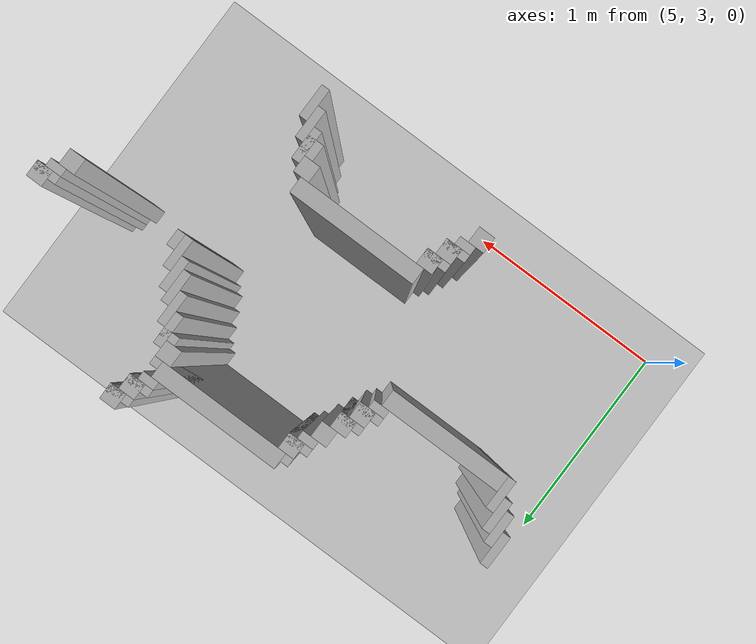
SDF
<sdf version="1.6">
 <world name="slam_world">
  <model name="ground_plane">
   <static>true</static>
   <link name="link">
    <collision name="collision">
     <geometry><plane><normal>0 0 1</normal><size>100 100</size></plane></geometry>
    </collision>
    <visual name="visual">
     <geometry><plane><normal>0 0 1</normal><size>100 100</size></plane></geometry>
     <material>
      <ambient>0.8 0.8 0.8 1</ambient>
      <diffuse>0.8 0.8 0.8 1</diffuse>
      <specular>0.8 0.8 0.8 1</specular>
     </material>
    </visual>
   </link>
  </model>
  <model name="wall_4296">
   <static>true</static>
   <pose>6.751740139211137 4.454756380510441 1.0 0 0 0</pose>
   <link name="link">
    <collision name="collision">
     <geometry><box><size>0.06960556844547564 0.06960556844547564 2.0</size></box></geometry>
    </collision>
    <visual name="visual">
     <geometry><box><size>0.06960556844547564 0.06960556844547564 2.0</size></box></geometry>
     <material><ambient>0.5 0.5 0.5 1</ambient><diffuse>0.7 0.7 0.7 1</diffuse></material>
    </visual>
   </link>
  </model>
  <model name="wall_4307">
   <static>true</static>
   <pose>6.734338747099768 4.437354988399072 1.0 0 0 0</pose>
   <link name="link">
    <collision name="collision">
     <geometry><box><size>0.10440835266821345 0.03480278422273782 2.0</size></box></geometry>
    </collision>
    <visual name="visual">
     <geometry><box><size>0.10440835266821345 0.03480278422273782 2.0</size></box></geometry>
     <material><ambient>0.5 0.5 0.5 1</ambient><diffuse>0.7 0.7 0.7 1</diffuse></material>
    </visual>
   </link>
  </model>
  <model name="wall_4315">
   <static>true</static>
   <pose>6.716937354988398 4.385150812064965 1.0 0 0 0</pose>
   <link name="link">
    <collision name="collision">
     <geometry><box><size>0.06960556844547564 0.06960556844547564 2.0</size></box></geometry>
    </collision>
    <visual name="visual">
     <geometry><box><size>0.06960556844547564 0.06960556844547564 2.0</size></box></geometry>
     <material><ambient>0.5 0.5 0.5 1</ambient><diffuse>0.7 0.7 0.7 1</diffuse></material>
    </visual>
   </link>
  </model>
  <model name="wall_4322">
   <static>true</static>
   <pose>6.69953596287703 4.367749419953596 1.0 0 0 0</pose>
   <link name="link">
    <collision name="collision">
     <geometry><box><size>0.10440835266821345 0.03480278422273782 2.0</size></box></geometry>
    </collision>
    <visual name="visual">
     <geometry><box><size>0.10440835266821345 0.03480278422273782 2.0</size></box></geometry>
     <material><ambient>0.5 0.5 0.5 1</ambient><diffuse>0.7 0.7 0.7 1</diffuse></material>
    </visual>
   </link>
  </model>
  <model name="wall_4330">
   <static>true</static>
   <pose>6.682134570765661 4.332946635730858 1.0 0 0 0</pose>
   <link name="link">
    <collision name="collision">
     <geometry><box><size>0.06960556844547564 0.03480278422273782 2.0</size></box></geometry>
    </collision>
    <visual name="visual">
     <geometry><box><size>0.06960556844547564 0.03480278422273782 2.0</size></box></geometry>
     <material><ambient>0.5 0.5 0.5 1</ambient><diffuse>0.7 0.7 0.7 1</diffuse></material>
    </visual>
   </link>
  </model>
  <model name="wall_4338">
   <static>true</static>
   <pose>6.403712296983758 4.280742459396752 1.0 0 0 0</pose>
   <link name="link">
    <collision name="collision">
     <geometry><box><size>0.5568445475638051 0.06960556844547564 2.0</size></box></geometry>
    </collision>
    <visual name="visual">
     <geometry><box><size>0.5568445475638051 0.06960556844547564 2.0</size></box></geometry>
     <material><ambient>0.5 0.5 0.5 1</ambient><diffuse>0.7 0.7 0.7 1</diffuse></material>
    </visual>
   </link>
  </model>
  <model name="wall_4350">
   <static>true</static>
   <pose>6.403712296983758 4.263341067285383 1.0 0 0 0</pose>
   <link name="link">
    <collision name="collision">
     <geometry><box><size>0.6264501160092807 0.03480278422273782 2.0</size></box></geometry>
    </collision>
    <visual name="visual">
     <geometry><box><size>0.6264501160092807 0.03480278422273782 2.0</size></box></geometry>
     <material><ambient>0.5 0.5 0.5 1</ambient><diffuse>0.7 0.7 0.7 1</diffuse></material>
    </visual>
   </link>
  </model>
  <model name="wall_4363">
   <static>true</static>
   <pose>6.125290023201856 4.211136890951276 1.0 0 0 0</pose>
   <link name="link">
    <collision name="collision">
     <geometry><box><size>0.06960556844547564 0.06960556844547564 2.0</size></box></geometry>
    </collision>
    <visual name="visual">
     <geometry><box><size>0.06960556844547564 0.06960556844547564 2.0</size></box></geometry>
     <material><ambient>0.5 0.5 0.5 1</ambient><diffuse>0.7 0.7 0.7 1</diffuse></material>
    </visual>
   </link>
  </model>
  <model name="wall_4364">
   <static>true</static>
   <pose>6.682134570765661 4.211136890951276 1.0 0 0 0</pose>
   <link name="link">
    <collision name="collision">
     <geometry><box><size>0.06960556844547564 0.06960556844547564 2.0</size></box></geometry>
    </collision>
    <visual name="visual">
     <geometry><box><size>0.06960556844547564 0.06960556844547564 2.0</size></box></geometry>
     <material><ambient>0.5 0.5 0.5 1</ambient><diffuse>0.7 0.7 0.7 1</diffuse></material>
    </visual>
   </link>
  </model>
  <model name="wall_4379">
   <static>true</static>
   <pose>6.107888631090487 4.193735498839907 1.0 0 0 0</pose>
   <link name="link">
    <collision name="collision">
     <geometry><box><size>0.10440835266821345 0.03480278422273782 2.0</size></box></geometry>
    </collision>
    <visual name="visual">
     <geometry><box><size>0.10440835266821345 0.03480278422273782 2.0</size></box></geometry>
     <material><ambient>0.5 0.5 0.5 1</ambient><diffuse>0.7 0.7 0.7 1</diffuse></material>
    </visual>
   </link>
  </model>
  <model name="wall_4380">
   <static>true</static>
   <pose>6.734338747099768 4.1415313225058 1.0 0 0 0</pose>
   <link name="link">
    <collision name="collision">
     <geometry><box><size>0.03480278422273782 0.13921113689095127 2.0</size></box></geometry>
    </collision>
    <visual name="visual">
     <geometry><box><size>0.03480278422273782 0.13921113689095127 2.0</size></box></geometry>
     <material><ambient>0.5 0.5 0.5 1</ambient><diffuse>0.7 0.7 0.7 1</diffuse></material>
    </visual>
   </link>
  </model>
  <model name="wall_4394">
   <static>true</static>
   <pose>6.090487238979118 4.158932714617169 1.0 0 0 0</pose>
   <link name="link">
    <collision name="collision">
     <geometry><box><size>0.06960556844547564 0.03480278422273782 2.0</size></box></geometry>
    </collision>
    <visual name="visual">
     <geometry><box><size>0.06960556844547564 0.03480278422273782 2.0</size></box></geometry>
     <material><ambient>0.5 0.5 0.5 1</ambient><diffuse>0.7 0.7 0.7 1</diffuse></material>
    </visual>
   </link>
  </model>
  <model name="wall_4395">
   <static>true</static>
   <pose>6.716937354988398 4.158932714617169 1.0 0 0 0</pose>
   <link name="link">
    <collision name="collision">
     <geometry><box><size>0.06960556844547564 0.03480278422273782 2.0</size></box></geometry>
    </collision>
    <visual name="visual">
     <geometry><box><size>0.06960556844547564 0.03480278422273782 2.0</size></box></geometry>
     <material><ambient>0.5 0.5 0.5 1</ambient><diffuse>0.7 0.7 0.7 1</diffuse></material>
    </visual>
   </link>
  </model>
  <model name="wall_4407">
   <static>true</static>
   <pose>5.307424593967517 4.071925754060325 1.0 0 0 0</pose>
   <link name="link">
    <collision name="collision">
     <geometry><box><size>0.03480278422273782 0.13921113689095127 2.0</size></box></geometry>
    </collision>
    <visual name="visual">
     <geometry><box><size>0.03480278422273782 0.13921113689095127 2.0</size></box></geometry>
     <material><ambient>0.5 0.5 0.5 1</ambient><diffuse>0.7 0.7 0.7 1</diffuse></material>
    </visual>
   </link>
  </model>
  <model name="wall_4408">
   <static>true</static>
   <pose>6.05568445475638 4.106728538283062 1.0 0 0 0</pose>
   <link name="link">
    <collision name="collision">
     <geometry><box><size>0.06960556844547564 0.06960556844547564 2.0</size></box></geometry>
    </collision>
    <visual name="visual">
     <geometry><box><size>0.06960556844547564 0.06960556844547564 2.0</size></box></geometry>
     <material><ambient>0.5 0.5 0.5 1</ambient><diffuse>0.7 0.7 0.7 1</diffuse></material>
    </visual>
   </link>
  </model>
  <model name="wall_4409">
   <static>true</static>
   <pose>6.769141531322505 4.071925754060325 1.0 0 0 0</pose>
   <link name="link">
    <collision name="collision">
     <geometry><box><size>0.03480278422273782 0.13921113689095127 2.0</size></box></geometry>
    </collision>
    <visual name="visual">
     <geometry><box><size>0.03480278422273782 0.13921113689095127 2.0</size></box></geometry>
     <material><ambient>0.5 0.5 0.5 1</ambient><diffuse>0.7 0.7 0.7 1</diffuse></material>
    </visual>
   </link>
  </model>
  <model name="wall_4423">
   <static>true</static>
   <pose>5.342227378190255 4.002320185614849 1.0 0 0 0</pose>
   <link name="link">
    <collision name="collision">
     <geometry><box><size>0.03480278422273782 0.13921113689095127 2.0</size></box></geometry>
    </collision>
    <visual name="visual">
     <geometry><box><size>0.03480278422273782 0.13921113689095127 2.0</size></box></geometry>
     <material><ambient>0.5 0.5 0.5 1</ambient><diffuse>0.7 0.7 0.7 1</diffuse></material>
    </visual>
   </link>
  </model>
  <model name="wall_4424">
   <static>true</static>
   <pose>6.020881670533642 4.037122969837587 1.0 0 0 0</pose>
   <link name="link">
    <collision name="collision">
     <geometry><box><size>0.06960556844547564 0.06960556844547564 2.0</size></box></geometry>
    </collision>
    <visual name="visual">
     <geometry><box><size>0.06960556844547564 0.06960556844547564 2.0</size></box></geometry>
     <material><ambient>0.5 0.5 0.5 1</ambient><diffuse>0.7 0.7 0.7 1</diffuse></material>
    </visual>
   </link>
  </model>
  <model name="wall_4425">
   <static>true</static>
   <pose>6.803944315545244 4.002320185614849 1.0 0 0 0</pose>
   <link name="link">
    <collision name="collision">
     <geometry><box><size>0.03480278422273782 0.13921113689095127 2.0</size></box></geometry>
    </collision>
    <visual name="visual">
     <geometry><box><size>0.03480278422273782 0.13921113689095127 2.0</size></box></geometry>
     <material><ambient>0.5 0.5 0.5 1</ambient><diffuse>0.7 0.7 0.7 1</diffuse></material>
    </visual>
   </link>
  </model>
  <model name="wall_4439">
   <static>true</static>
   <pose>5.377030162412993 3.967517401392111 1.0 0 0 0</pose>
   <link name="link">
    <collision name="collision">
     <geometry><box><size>0.03480278422273782 0.13921113689095127 2.0</size></box></geometry>
    </collision>
    <visual name="visual">
     <geometry><box><size>0.03480278422273782 0.13921113689095127 2.0</size></box></geometry>
     <material><ambient>0.5 0.5 0.5 1</ambient><diffuse>0.7 0.7 0.7 1</diffuse></material>
    </visual>
   </link>
  </model>
  <model name="wall_4440">
   <static>true</static>
   <pose>6.003480278422273 4.019721577726218 1.0 0 0 0</pose>
   <link name="link">
    <collision name="collision">
     <geometry><box><size>0.10440835266821345 0.03480278422273782 2.0</size></box></geometry>
    </collision>
    <visual name="visual">
     <geometry><box><size>0.10440835266821345 0.03480278422273782 2.0</size></box></geometry>
     <material><ambient>0.5 0.5 0.5 1</ambient><diffuse>0.7 0.7 0.7 1</diffuse></material>
    </visual>
   </link>
  </model>
  <model name="wall_4441">
   <static>true</static>
   <pose>6.838747099767981 3.967517401392111 1.0 0 0 0</pose>
   <link name="link">
    <collision name="collision">
     <geometry><box><size>0.03480278422273782 0.13921113689095127 2.0</size></box></geometry>
    </collision>
    <visual name="visual">
     <geometry><box><size>0.03480278422273782 0.13921113689095127 2.0</size></box></geometry>
     <material><ambient>0.5 0.5 0.5 1</ambient><diffuse>0.7 0.7 0.7 1</diffuse></material>
    </visual>
   </link>
  </model>
  <model name="wall_4454">
   <static>true</static>
   <pose>5.986078886310905 3.967517401392111 1.0 0 0 0</pose>
   <link name="link">
    <collision name="collision">
     <geometry><box><size>0.06960556844547564 0.06960556844547564 2.0</size></box></geometry>
    </collision>
    <visual name="visual">
     <geometry><box><size>0.06960556844547564 0.06960556844547564 2.0</size></box></geometry>
     <material><ambient>0.5 0.5 0.5 1</ambient><diffuse>0.7 0.7 0.7 1</diffuse></material>
    </visual>
   </link>
  </model>
  <model name="wall_4455">
   <static>true</static>
   <pose>7.447795823665893 3.967517401392111 1.0 0 0 0</pose>
   <link name="link">
    <collision name="collision">
     <geometry><box><size>0.06960556844547564 0.06960556844547564 2.0</size></box></geometry>
    </collision>
    <visual name="visual">
     <geometry><box><size>0.06960556844547564 0.06960556844547564 2.0</size></box></geometry>
     <material><ambient>0.5 0.5 0.5 1</ambient><diffuse>0.7 0.7 0.7 1</diffuse></material>
    </visual>
   </link>
  </model>
  <model name="wall_4464">
   <static>true</static>
   <pose>5.41183294663573 3.897911832946636 1.0 0 0 0</pose>
   <link name="link">
    <collision name="collision">
     <geometry><box><size>0.03480278422273782 0.13921113689095127 2.0</size></box></geometry>
    </collision>
    <visual name="visual">
     <geometry><box><size>0.03480278422273782 0.13921113689095127 2.0</size></box></geometry>
     <material><ambient>0.5 0.5 0.5 1</ambient><diffuse>0.7 0.7 0.7 1</diffuse></material>
    </visual>
   </link>
  </model>
  <model name="wall_4465">
   <static>true</static>
   <pose>5.968677494199536 3.9501160092807424 1.0 0 0 0</pose>
   <link name="link">
    <collision name="collision">
     <geometry><box><size>0.10440835266821345 0.03480278422273782 2.0</size></box></geometry>
    </collision>
    <visual name="visual">
     <geometry><box><size>0.10440835266821345 0.03480278422273782 2.0</size></box></geometry>
     <material><ambient>0.5 0.5 0.5 1</ambient><diffuse>0.7 0.7 0.7 1</diffuse></material>
    </visual>
   </link>
  </model>
  <model name="wall_4466">
   <static>true</static>
   <pose>6.8735498839907185 3.897911832946636 1.0 0 0 0</pose>
   <link name="link">
    <collision name="collision">
     <geometry><box><size>0.03480278422273782 0.13921113689095127 2.0</size></box></geometry>
    </collision>
    <visual name="visual">
     <geometry><box><size>0.03480278422273782 0.13921113689095127 2.0</size></box></geometry>
     <material><ambient>0.5 0.5 0.5 1</ambient><diffuse>0.7 0.7 0.7 1</diffuse></material>
    </visual>
   </link>
  </model>
  <model name="wall_4467">
   <static>true</static>
   <pose>7.430394431554524 3.9501160092807424 1.0 0 0 0</pose>
   <link name="link">
    <collision name="collision">
     <geometry><box><size>0.10440835266821345 0.03480278422273782 2.0</size></box></geometry>
    </collision>
    <visual name="visual">
     <geometry><box><size>0.10440835266821345 0.03480278422273782 2.0</size></box></geometry>
     <material><ambient>0.5 0.5 0.5 1</ambient><diffuse>0.7 0.7 0.7 1</diffuse></material>
    </visual>
   </link>
  </model>
  <model name="wall_4479">
   <static>true</static>
   <pose>5.951276102088166 3.9153132250580045 1.0 0 0 0</pose>
   <link name="link">
    <collision name="collision">
     <geometry><box><size>0.06960556844547564 0.03480278422273782 2.0</size></box></geometry>
    </collision>
    <visual name="visual">
     <geometry><box><size>0.06960556844547564 0.03480278422273782 2.0</size></box></geometry>
     <material><ambient>0.5 0.5 0.5 1</ambient><diffuse>0.7 0.7 0.7 1</diffuse></material>
    </visual>
   </link>
  </model>
  <model name="wall_4480">
   <static>true</static>
   <pose>7.412993039443156 3.9153132250580045 1.0 0 0 0</pose>
   <link name="link">
    <collision name="collision">
     <geometry><box><size>0.06960556844547564 0.03480278422273782 2.0</size></box></geometry>
    </collision>
    <visual name="visual">
     <geometry><box><size>0.06960556844547564 0.03480278422273782 2.0</size></box></geometry>
     <material><ambient>0.5 0.5 0.5 1</ambient><diffuse>0.7 0.7 0.7 1</diffuse></material>
    </visual>
   </link>
  </model>
  <model name="wall_4489">
   <static>true</static>
   <pose>5.690255220417633 3.863109048723898 1.0 0 0 0</pose>
   <link name="link">
    <collision name="collision">
     <geometry><box><size>0.5220417633410672 0.06960556844547564 2.0</size></box></geometry>
    </collision>
    <visual name="visual">
     <geometry><box><size>0.5220417633410672 0.06960556844547564 2.0</size></box></geometry>
     <material><ambient>0.5 0.5 0.5 1</ambient><diffuse>0.7 0.7 0.7 1</diffuse></material>
    </visual>
   </link>
  </model>
  <model name="wall_4490">
   <static>true</static>
   <pose>6.908352668213457 3.863109048723898 1.0 0 0 0</pose>
   <link name="link">
    <collision name="collision">
     <geometry><box><size>0.03480278422273782 0.06960556844547564 2.0</size></box></geometry>
    </collision>
    <visual name="visual">
     <geometry><box><size>0.03480278422273782 0.06960556844547564 2.0</size></box></geometry>
     <material><ambient>0.5 0.5 0.5 1</ambient><diffuse>0.7 0.7 0.7 1</diffuse></material>
    </visual>
   </link>
  </model>
  <model name="wall_4491">
   <static>true</static>
   <pose>7.378190255220417 3.863109048723898 1.0 0 0 0</pose>
   <link name="link">
    <collision name="collision">
     <geometry><box><size>0.06960556844547564 0.06960556844547564 2.0</size></box></geometry>
    </collision>
    <visual name="visual">
     <geometry><box><size>0.06960556844547564 0.06960556844547564 2.0</size></box></geometry>
     <material><ambient>0.5 0.5 0.5 1</ambient><diffuse>0.7 0.7 0.7 1</diffuse></material>
    </visual>
   </link>
  </model>
  <model name="wall_4595">
   <static>true</static>
   <pose>6.403712296983758 3.445475638051044 1.0 0 0 0</pose>
   <link name="link">
    <collision name="collision">
     <geometry><box><size>0.5568445475638051 0.06960556844547564 2.0</size></box></geometry>
    </collision>
    <visual name="visual">
     <geometry><box><size>0.5568445475638051 0.06960556844547564 2.0</size></box></geometry>
     <material><ambient>0.5 0.5 0.5 1</ambient><diffuse>0.7 0.7 0.7 1</diffuse></material>
    </visual>
   </link>
  </model>
  <model name="wall_4614">
   <static>true</static>
   <pose>6.125290023201856 3.3758700696055683 1.0 0 0 0</pose>
   <link name="link">
    <collision name="collision">
     <geometry><box><size>0.06960556844547564 0.06960556844547564 2.0</size></box></geometry>
    </collision>
    <visual name="visual">
     <geometry><box><size>0.06960556844547564 0.06960556844547564 2.0</size></box></geometry>
     <material><ambient>0.5 0.5 0.5 1</ambient><diffuse>0.7 0.7 0.7 1</diffuse></material>
    </visual>
   </link>
  </model>
  <model name="wall_4615">
   <static>true</static>
   <pose>6.682134570765661 3.3758700696055683 1.0 0 0 0</pose>
   <link name="link">
    <collision name="collision">
     <geometry><box><size>0.06960556844547564 0.06960556844547564 2.0</size></box></geometry>
    </collision>
    <visual name="visual">
     <geometry><box><size>0.06960556844547564 0.06960556844547564 2.0</size></box></geometry>
     <material><ambient>0.5 0.5 0.5 1</ambient><diffuse>0.7 0.7 0.7 1</diffuse></material>
    </visual>
   </link>
  </model>
  <model name="wall_4631">
   <static>true</static>
   <pose>6.107888631090487 3.358468677494199 1.0 0 0 0</pose>
   <link name="link">
    <collision name="collision">
     <geometry><box><size>0.10440835266821345 0.03480278422273782 2.0</size></box></geometry>
    </collision>
    <visual name="visual">
     <geometry><box><size>0.10440835266821345 0.03480278422273782 2.0</size></box></geometry>
     <material><ambient>0.5 0.5 0.5 1</ambient><diffuse>0.7 0.7 0.7 1</diffuse></material>
    </visual>
   </link>
  </model>
  <model name="wall_4632">
   <static>true</static>
   <pose>6.734338747099768 3.3062645011600926 1.0 0 0 0</pose>
   <link name="link">
    <collision name="collision">
     <geometry><box><size>0.03480278422273782 0.13921113689095127 2.0</size></box></geometry>
    </collision>
    <visual name="visual">
     <geometry><box><size>0.03480278422273782 0.13921113689095127 2.0</size></box></geometry>
     <material><ambient>0.5 0.5 0.5 1</ambient><diffuse>0.7 0.7 0.7 1</diffuse></material>
    </visual>
   </link>
  </model>
  <model name="wall_4648">
   <static>true</static>
   <pose>6.090487238979118 3.3062645011600926 1.0 0 0 0</pose>
   <link name="link">
    <collision name="collision">
     <geometry><box><size>0.06960556844547564 0.06960556844547564 2.0</size></box></geometry>
    </collision>
    <visual name="visual">
     <geometry><box><size>0.06960556844547564 0.06960556844547564 2.0</size></box></geometry>
     <material><ambient>0.5 0.5 0.5 1</ambient><diffuse>0.7 0.7 0.7 1</diffuse></material>
    </visual>
   </link>
  </model>
  <model name="wall_4649">
   <static>true</static>
   <pose>6.716937354988398 3.3062645011600926 1.0 0 0 0</pose>
   <link name="link">
    <collision name="collision">
     <geometry><box><size>0.06960556844547564 0.06960556844547564 2.0</size></box></geometry>
    </collision>
    <visual name="visual">
     <geometry><box><size>0.06960556844547564 0.06960556844547564 2.0</size></box></geometry>
     <material><ambient>0.5 0.5 0.5 1</ambient><diffuse>0.7 0.7 0.7 1</diffuse></material>
    </visual>
   </link>
  </model>
  <model name="wall_4665">
   <static>true</static>
   <pose>6.073085846867749 3.288863109048724 1.0 0 0 0</pose>
   <link name="link">
    <collision name="collision">
     <geometry><box><size>0.10440835266821345 0.03480278422273782 2.0</size></box></geometry>
    </collision>
    <visual name="visual">
     <geometry><box><size>0.10440835266821345 0.03480278422273782 2.0</size></box></geometry>
     <material><ambient>0.5 0.5 0.5 1</ambient><diffuse>0.7 0.7 0.7 1</diffuse></material>
    </visual>
   </link>
  </model>
  <model name="wall_4666">
   <static>true</static>
   <pose>6.769141531322505 3.236658932714617 1.0 0 0 0</pose>
   <link name="link">
    <collision name="collision">
     <geometry><box><size>0.03480278422273782 0.13921113689095127 2.0</size></box></geometry>
    </collision>
    <visual name="visual">
     <geometry><box><size>0.03480278422273782 0.13921113689095127 2.0</size></box></geometry>
     <material><ambient>0.5 0.5 0.5 1</ambient><diffuse>0.7 0.7 0.7 1</diffuse></material>
    </visual>
   </link>
  </model>
  <model name="wall_4678">
   <static>true</static>
   <pose>6.05568445475638 3.254060324825986 1.0 0 0 0</pose>
   <link name="link">
    <collision name="collision">
     <geometry><box><size>0.06960556844547564 0.03480278422273782 2.0</size></box></geometry>
    </collision>
    <visual name="visual">
     <geometry><box><size>0.06960556844547564 0.03480278422273782 2.0</size></box></geometry>
     <material><ambient>0.5 0.5 0.5 1</ambient><diffuse>0.7 0.7 0.7 1</diffuse></material>
    </visual>
   </link>
  </model>
  <model name="wall_4690">
   <static>true</static>
   <pose>6.020881670533642 3.201856148491879 1.0 0 0 0</pose>
   <link name="link">
    <collision name="collision">
     <geometry><box><size>0.06960556844547564 0.06960556844547564 2.0</size></box></geometry>
    </collision>
    <visual name="visual">
     <geometry><box><size>0.06960556844547564 0.06960556844547564 2.0</size></box></geometry>
     <material><ambient>0.5 0.5 0.5 1</ambient><diffuse>0.7 0.7 0.7 1</diffuse></material>
    </visual>
   </link>
  </model>
  <model name="wall_4691">
   <static>true</static>
   <pose>6.803944315545244 3.167053364269141 1.0 0 0 0</pose>
   <link name="link">
    <collision name="collision">
     <geometry><box><size>0.03480278422273782 0.13921113689095127 2.0</size></box></geometry>
    </collision>
    <visual name="visual">
     <geometry><box><size>0.03480278422273782 0.13921113689095127 2.0</size></box></geometry>
     <material><ambient>0.5 0.5 0.5 1</ambient><diffuse>0.7 0.7 0.7 1</diffuse></material>
    </visual>
   </link>
  </model>
 </world>
</sdf>
